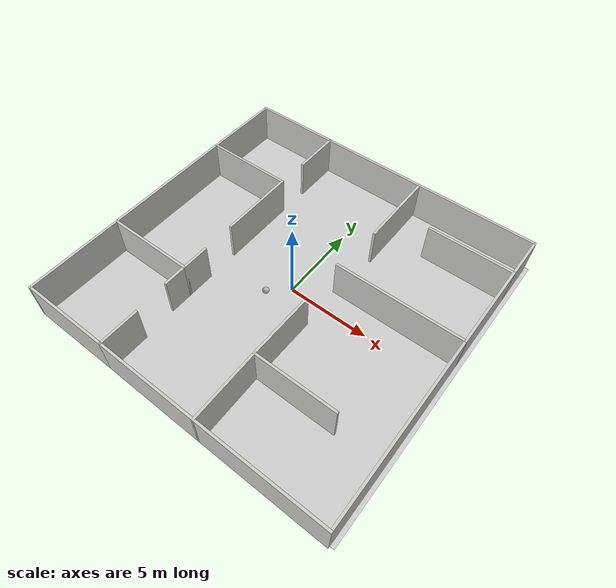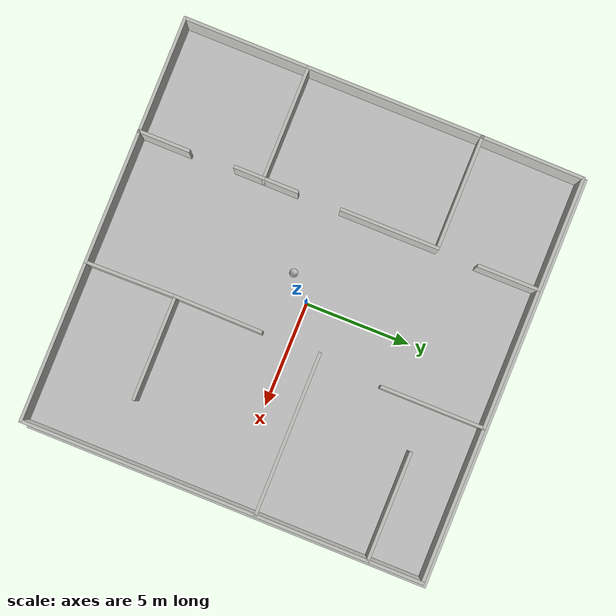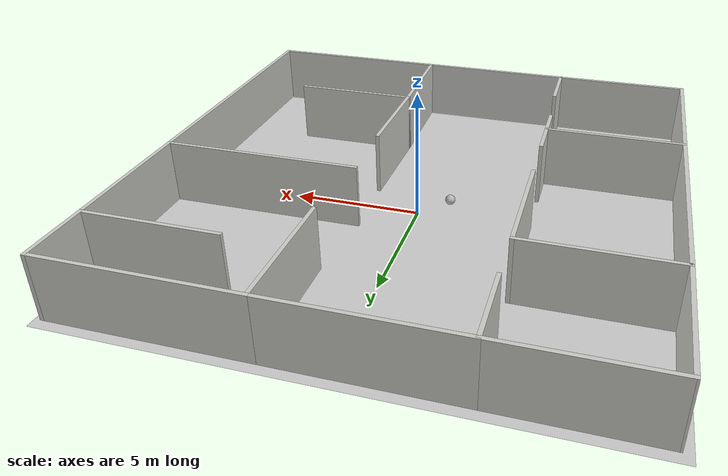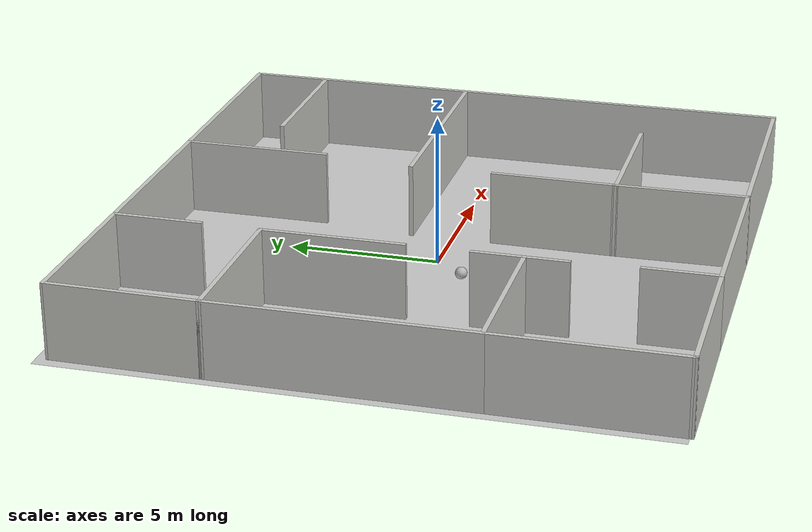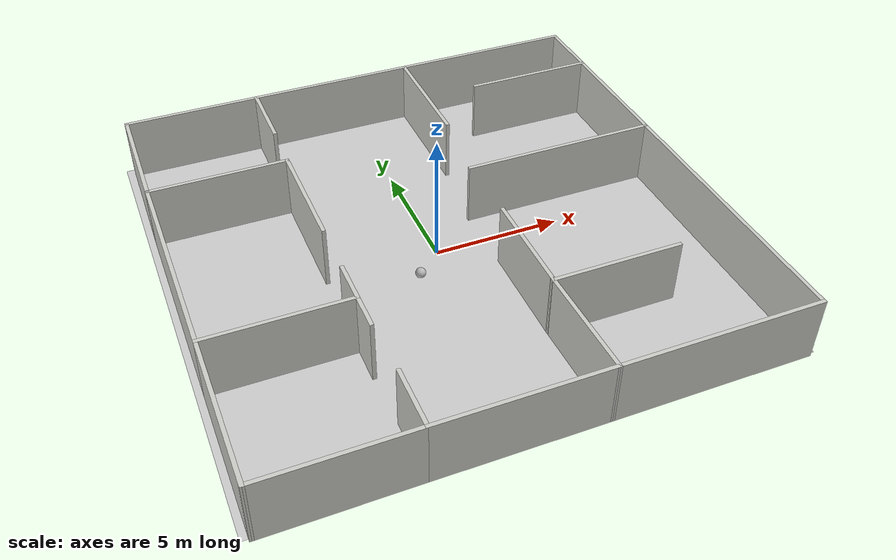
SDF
<sdf version="1.7">
 <world name="default">
  <gravity>0 0 -9.8</gravity>
  <magnetic_field>6e-06 2.3e-05 -4.2e-05</magnetic_field>
  <atmosphere type="adiabatic"/>
  <physics type="ode">
   <max_step_size>0.001</max_step_size>
   <real_time_factor>1</real_time_factor>
   <real_time_update_rate>1000</real_time_update_rate>
  </physics>
  <scene>
   <sky><clouds><speed>12</speed></clouds></sky>
   <ambient>0.4 0.4 0.4 1</ambient>
   <background>0.7 0.7 0.7 1</background>
   <shadows>1</shadows>
  </scene>
  <spherical_coordinates>
   <surface_model>EARTH_WGS84</surface_model>
   <latitude_deg>0</latitude_deg>
   <longitude_deg>0</longitude_deg>
   <elevation>0</elevation>
   <heading_deg>0</heading_deg>
  </spherical_coordinates>
  <model name="byu">
   <static>1</static>
   <link name="link">
    <collision name="collision">
     <geometry><plane><normal>0 0 1</normal><size>20 19.5</size></plane></geometry>
     <surface><friction><ode><mu>100</mu><mu2>50</mu2></ode></friction></surface>
    </collision>
    <visual name="visual">
     <cast_shadows>0</cast_shadows>
     <geometry><plane><normal>0 0 1</normal><size>20 19.5</size></plane></geometry>
     <material>
      <script><uri>model://byu/materials/scripts/byu.material</uri><name>BYU/ground</name></script>
     </material>
    </visual>
   </link>
   <pose>-0.039876 0.058624 0 0 -0 0</pose>
  </model>
  <light name="user_spot_light_0" type="spot">
   <pose>0.045064 0.035485 1 0 -0 0</pose>
   <diffuse>0.5 0.5 0.5 1</diffuse>
   <specular>0.1 0.1 0.1 1</specular>
   <direction>0 0 -1</direction>
   <attenuation>
    <range>20</range>
    <constant>0.5</constant>
    <linear>0.01</linear>
    <quadratic>0.001</quadratic>
   </attenuation>
   <cast_shadows>0</cast_shadows>
   <spot><inner_angle>0.6</inner_angle><outer_angle>1</outer_angle><falloff>1</falloff></spot>
  </light>
  <light name="user_point_light_0" type="point">
   <pose>-6.90669 5.7194 1 0 -0 0</pose>
   <diffuse>0.5 0.5 0.5 1</diffuse>
   <specular>0.1 0.1 0.1 1</specular>
   <attenuation>
    <range>20</range>
    <constant>0.5</constant>
    <linear>0.01</linear>
    <quadratic>0.001</quadratic>
   </attenuation>
   <cast_shadows>0</cast_shadows>
   <direction>0 0 -1</direction>
   <spot><inner_angle>0</inner_angle><outer_angle>0</outer_angle><falloff>0</falloff></spot>
  </light>
  <model name="map1">
   <pose>-0.02989 -0.17816 0 0 -0 0</pose>
   <link name="Wall_12">
    <collision name="Wall_12_Collision">
     <geometry><box><size>4.75 0.15 2.5</size></box></geometry>
     <pose>0 0 1.25 0 -0 0</pose>
    </collision>
    <visual name="Wall_12_Visual">
     <pose>0 0 1.25 0 -0 0</pose>
     <geometry><box><size>4.75 0.15 2.5</size></box></geometry>
     <material>
      <script><uri>file://media/materials/scripts/gazebo.material</uri><name>Gazebo/CeilingTiled</name></script>
      <ambient>1 1 1 1</ambient>
     </material>
     <meta><layer>0</layer></meta>
    </visual>
    <pose>-4.3247 2.41561 0 0 -0 -1.5708</pose>
   </link>
   <link name="Wall_16">
    <collision name="Wall_16_Collision">
     <geometry><box><size>5.5 0.15 2.5</size></box></geometry>
     <pose>0 0 1.25 0 -0 0</pose>
    </collision>
    <visual name="Wall_16_Visual">
     <pose>0 0 1.25 0 -0 0</pose>
     <geometry><box><size>5.5 0.15 2.5</size></box></geometry>
     <material>
      <script><uri>file://media/materials/scripts/gazebo.material</uri><name>Gazebo/CeilingTiled</name></script>
      <ambient>1 1 1 1</ambient>
     </material>
     <meta><layer>0</layer></meta>
    </visual>
    <pose>-6.9997 4.71561 0 0 -0 3.14159</pose>
   </link>
   <link name="Wall_17">
    <collision name="Wall_17_Collision">
     <geometry><box><size>0.15 0.15 2.5</size></box></geometry>
     <pose>0 0 1.25 0 -0 0</pose>
    </collision>
    <visual name="Wall_17_Visual">
     <pose>0 0 1.25 0 -0 0</pose>
     <geometry><box><size>0.15 0.15 2.5</size></box></geometry>
     <material>
      <script><uri>file://media/materials/scripts/gazebo.material</uri><name>Gazebo/Grey</name></script>
      <ambient>1 1 1 1</ambient>
     </material>
     <meta><layer>0</layer></meta>
    </visual>
    <pose>-9.6747 4.71561 0 0 -0 0</pose>
   </link>
   <link name="Wall_19">
    <collision name="Wall_19_Collision">
     <geometry><box><size>8.5 0.15 2.5</size></box></geometry>
     <pose>0 0 1.25 0 -0 0</pose>
    </collision>
    <visual name="Wall_19_Visual">
     <pose>0 0 1.25 0 -0 0</pose>
     <geometry><box><size>8.5 0.15 2.5</size></box></geometry>
     <material>
      <script><uri>file://media/materials/scripts/gazebo.material</uri><name>Gazebo/CeilingTiled</name></script>
      <ambient>1 1 1 1</ambient>
     </material>
     <meta><layer>0</layer></meta>
    </visual>
    <pose>-9.6747 0.540606 0 0 -0 -1.5708</pose>
   </link>
   <link name="Wall_20">
    <collision name="Wall_20_Collision">
     <geometry><box><size>5.5 0.15 2.5</size></box></geometry>
     <pose>0 0 1.25 0 -0 0</pose>
    </collision>
    <visual name="Wall_20_Visual">
     <pose>0 0 1.25 0 -0 0</pose>
     <geometry><box><size>5.5 0.15 2.5</size></box></geometry>
     <material>
      <script><uri>file://media/materials/scripts/gazebo.material</uri><name>Gazebo/CeilingTiled</name></script>
      <ambient>1 1 1 1</ambient>
     </material>
     <meta><layer>0</layer></meta>
    </visual>
    <pose>-6.9997 -3.63439 0 0 -0 0</pose>
   </link>
   <link name="Wall_21">
    <collision name="Wall_21_Collision">
     <geometry><box><size>1.75 0.15 2.5</size></box></geometry>
     <pose>0 0 1.25 0 -0 0</pose>
    </collision>
    <visual name="Wall_21_Visual">
     <pose>0 0 1.25 0 -0 0</pose>
     <geometry><box><size>1.75 0.15 2.5</size></box></geometry>
     <material>
      <script><uri>file://media/materials/scripts/gazebo.material</uri><name>Gazebo/CeilingTiled</name></script>
      <ambient>1 1 1 1</ambient>
     </material>
     <meta><layer>0</layer></meta>
    </visual>
    <pose>-4.3247 -2.83439 0 0 -0 1.5708</pose>
   </link>
   <link name="Wall_23">
    <collision name="Wall_23_Collision">
     <geometry><box><size>1.5 0.15 2.5</size></box></geometry>
     <pose>0 0 1.25 0 -0 0</pose>
    </collision>
    <visual name="Wall_23_Visual">
     <pose>0 0 1.25 0 -0 0</pose>
     <geometry><box><size>1.5 0.15 2.5</size></box></geometry>
     <material>
      <script><uri>file://media/materials/scripts/gazebo.material</uri><name>Gazebo/CeilingTiled</name></script>
      <ambient>1 1 1 1</ambient>
     </material>
     <meta><layer>0</layer></meta>
    </visual>
    <pose>-4.3247 -4.30939 0 0 -0 -1.5708</pose>
   </link>
   <link name="Wall_26">
    <collision name="Wall_26_Collision">
     <geometry><box><size>6.08091 0.15 2.5</size></box></geometry>
     <pose>0 0 1.25 0 -0 0</pose>
    </collision>
    <visual name="Wall_26_Visual">
     <pose>0 0 1.25 0 -0 0</pose>
     <geometry><box><size>6.08091 0.15 2.5</size></box></geometry>
     <material>
      <script><uri>file://media/materials/scripts/gazebo.material</uri><name>Gazebo/CeilingTiled</name></script>
      <ambient>1 1 1 1</ambient>
     </material>
     <meta><layer>0</layer></meta>
    </visual>
    <pose>-9.6747 -6.59985 0 0 -0 -1.5708</pose>
   </link>
   <link name="Wall_28">
    <collision name="Wall_28_Collision">
     <geometry><box><size>11.3309 0.15 2.5</size></box></geometry>
     <pose>0 0 1.25 0 -0 0</pose>
    </collision>
    <visual name="Wall_28_Visual">
     <pose>0 0 1.25 0 -0 0</pose>
     <geometry><box><size>11.3309 0.15 2.5</size></box></geometry>
     <material>
      <script><uri>file://media/materials/scripts/gazebo.material</uri><name>Gazebo/CeilingTiled</name></script>
      <ambient>1 1 1 1</ambient>
     </material>
     <meta><layer>0</layer></meta>
    </visual>
    <pose>9.6753 -3.97485 0 0 -0 1.5708</pose>
   </link>
   <link name="Wall_29">
    <collision name="Wall_29_Collision">
     <geometry><box><size>5.5 0.15 2.5</size></box></geometry>
     <pose>0 0 1.25 0 -0 0</pose>
    </collision>
    <visual name="Wall_29_Visual">
     <pose>0 0 1.25 0 -0 0</pose>
     <geometry><box><size>5.5 0.15 2.5</size></box></geometry>
     <material>
      <script><uri>file://media/materials/scripts/gazebo.material</uri><name>Gazebo/CeilingTiled</name></script>
      <ambient>1 1 1 1</ambient>
     </material>
     <meta><layer>0</layer></meta>
    </visual>
    <pose>9.6753 4.29061 0 0 -0 1.5708</pose>
   </link>
   <link name="Wall_32">
    <collision name="Wall_32_Collision">
     <geometry><box><size>2.75 0.15 2.5</size></box></geometry>
     <pose>0 0 1.25 0 -0 0</pose>
    </collision>
    <visual name="Wall_32_Visual">
     <pose>0 0 1.25 0 -0 0</pose>
     <geometry><box><size>2.75 0.15 2.5</size></box></geometry>
     <material>
      <script><uri>file://media/materials/scripts/gazebo.material</uri><name>Gazebo/CeilingTiled</name></script>
      <ambient>1 1 1 1</ambient>
     </material>
     <meta><layer>0</layer></meta>
    </visual>
    <pose>9.6753 8.26561 0 0 -0 1.5708</pose>
   </link>
   <link name="Wall_34">
    <collision name="Wall_34_Collision">
     <geometry><box><size>5.25 0.15 2.5</size></box></geometry>
     <pose>0 0 1.25 0 -0 0</pose>
    </collision>
    <visual name="Wall_34_Visual">
     <pose>0 0 1.25 0 -0 0</pose>
     <geometry><box><size>5.25 0.15 2.5</size></box></geometry>
     <material>
      <script><uri>file://media/materials/scripts/gazebo.material</uri><name>Gazebo/CeilingTiled</name></script>
      <ambient>1 1 1 1</ambient>
     </material>
     <meta><layer>0</layer></meta>
    </visual>
    <pose>7.1253 6.96561 0 0 -0 3.14159</pose>
   </link>
   <link name="Wall_38">
    <collision name="Wall_38_Collision">
     <geometry><box><size>7.82777 0.15 2.5</size></box></geometry>
     <pose>0 0 1.25 0 -0 0</pose>
    </collision>
    <visual name="Wall_38_Visual">
     <pose>0 0 1.25 0 -0 0</pose>
     <geometry><box><size>7.82777 0.15 2.5</size></box></geometry>
     <material>
      <script><uri>file://media/materials/scripts/gazebo.material</uri><name>Gazebo/CeilingTiled</name></script>
      <ambient>1 1 1 1</ambient>
     </material>
     <meta><layer>0</layer></meta>
    </visual>
    <pose>5.83642 1.60681 0 0 -0 0.002292</pose>
   </link>
   <link name="Wall_40">
    <collision name="Wall_40_Collision">
     <geometry><box><size>4.2502 0.15 2.5</size></box></geometry>
     <pose>0 0 1.25 0 -0 0</pose>
    </collision>
    <visual name="Wall_40_Visual">
     <pose>0 0 1.25 0 -0 0</pose>
     <geometry><box><size>4.2502 0.15 2.5</size></box></geometry>
     <material>
      <script><uri>file://media/materials/scripts/gazebo.material</uri><name>Gazebo/CeilingTiled</name></script>
      <ambient>1 1 1 1</ambient>
     </material>
     <meta><layer>0</layer></meta>
    </visual>
    <pose>2.03364 -3.24656 0 0 -0 -1.58066</pose>
   </link>
   <link name="Wall_41">
    <collision name="Wall_41_Collision">
     <geometry><box><size>5.04113 0.15 2.5</size></box></geometry>
     <pose>0 0 1.25 0 -0 0</pose>
    </collision>
    <visual name="Wall_41_Visual">
     <pose>0 0 1.25 0 -0 0</pose>
     <geometry><box><size>5.04113 0.15 2.5</size></box></geometry>
     <material>
      <script><uri>file://media/materials/scripts/gazebo.material</uri><name>Gazebo/CeilingTiled</name></script>
      <ambient>1 1 1 1</ambient>
     </material>
     <meta><layer>0</layer></meta>
    </visual>
    <pose>4.45864 -5.29657 0 0 -0 0</pose>
   </link>
   <link name="Wall_43">
    <collision name="Wall_43_Collision">
     <geometry><box><size>4.45964 0.15 2.5</size></box></geometry>
     <pose>0 0 1.25 0 -0 0</pose>
    </collision>
    <visual name="Wall_43_Visual">
     <pose>0 0 1.25 0 -0 0</pose>
     <geometry><box><size>4.45964 0.15 2.5</size></box></geometry>
     <material>
      <script><uri>file://media/materials/scripts/gazebo.material</uri><name>Gazebo/CeilingTiled</name></script>
      <ambient>1 1 1 1</ambient>
     </material>
     <meta><layer>0</layer></meta>
    </visual>
    <pose>2.04436 -7.41071 0 0 -0 -1.55644</pose>
   </link>
   <link name="Wall_46">
    <collision name="Wall_46_Collision">
     <geometry><box><size>7.5 0.15 2.5</size></box></geometry>
     <pose>0 0 1.25 0 -0 0</pose>
    </collision>
    <visual name="Wall_46_Visual">
     <pose>0 0 1.25 0 -0 0</pose>
     <geometry><box><size>7.5 0.15 2.5</size></box></geometry>
     <material>
      <script><uri>file://media/materials/scripts/gazebo.material</uri><name>Gazebo/CeilingTiled</name></script>
      <ambient>1 1 1 1</ambient>
     </material>
     <meta><layer>0</layer></meta>
    </visual>
    <pose>6.0003 9.56561 0 0 -0 3.14159</pose>
   </link>
   <link name="Wall_47">
    <collision name="Wall_47_Collision">
     <geometry><box><size>5 0.15 2.5</size></box></geometry>
     <pose>0 0 1.25 0 -0 0</pose>
    </collision>
    <visual name="Wall_47_Visual">
     <pose>0 0 1.25 0 -0 0</pose>
     <geometry><box><size>5 0.15 2.5</size></box></geometry>
     <material>
      <script><uri>file://media/materials/scripts/gazebo.material</uri><name>Gazebo/CeilingTiled</name></script>
      <ambient>1 1 1 1</ambient>
     </material>
     <meta><layer>0</layer></meta>
    </visual>
    <pose>2.3253 7.14061 0 0 -0 -1.5708</pose>
   </link>
   <link name="Wall_49">
    <collision name="Wall_49_Collision">
     <geometry><box><size>6.75 0.15 2.5</size></box></geometry>
     <pose>0 0 1.25 0 -0 0</pose>
    </collision>
    <visual name="Wall_49_Visual">
     <pose>0 0 1.25 0 -0 0</pose>
     <geometry><box><size>6.75 0.15 2.5</size></box></geometry>
     <material>
      <script><uri>file://media/materials/scripts/gazebo.material</uri><name>Gazebo/CeilingTiled</name></script>
      <ambient>1 1 1 1</ambient>
     </material>
     <meta><layer>0</layer></meta>
    </visual>
    <pose>-0.974701 9.56561 0 0 -0 3.14159</pose>
   </link>
   <link name="Wall_50">
    <collision name="Wall_50_Collision">
     <geometry><box><size>3 0.15 2.5</size></box></geometry>
     <pose>0 0 1.25 0 -0 0</pose>
    </collision>
    <visual name="Wall_50_Visual">
     <pose>0 0 1.25 0 -0 0</pose>
     <geometry><box><size>3 0.15 2.5</size></box></geometry>
     <material>
      <script><uri>file://media/materials/scripts/gazebo.material</uri><name>Gazebo/CeilingTiled</name></script>
      <ambient>1 1 1 1</ambient>
     </material>
     <meta><layer>0</layer></meta>
    </visual>
    <pose>-4.2747 8.14061 0 0 -0 -1.5708</pose>
   </link>
   <link name="Wall_53">
    <collision name="Wall_53_Collision">
     <geometry><box><size>5.5 0.15 2.5</size></box></geometry>
     <pose>0 0 1.25 0 -0 0</pose>
    </collision>
    <visual name="Wall_53_Visual">
     <pose>0 0 1.25 0 -0 0</pose>
     <geometry><box><size>5.5 0.15 2.5</size></box></geometry>
     <material>
      <script><uri>file://media/materials/scripts/gazebo.material</uri><name>Gazebo/CeilingTiled</name></script>
      <ambient>1 1 1 1</ambient>
     </material>
     <meta><layer>0</layer></meta>
    </visual>
    <pose>-6.9497 9.56561 0 0 -0 3.14159</pose>
   </link>
   <link name="Wall_56">
    <collision name="Wall_56_Collision">
     <geometry><box><size>5.00026 0.15 2.5</size></box></geometry>
     <pose>0 0 1.25 0 -0 0</pose>
    </collision>
    <visual name="Wall_56_Visual">
     <pose>0 0 1.25 0 -0 0</pose>
     <geometry><box><size>5.00026 0.15 2.5</size></box></geometry>
     <material>
      <script><uri>file://media/materials/scripts/gazebo.material</uri><name>Gazebo/CeilingTiled</name></script>
      <ambient>1 1 1 1</ambient>
     </material>
     <meta><layer>0</layer></meta>
    </visual>
    <pose>-9.6497 7.14061 0 0 -0 1.56049</pose>
   </link>
   <link name="Wall_58">
    <collision name="Wall_58_Collision">
     <geometry><box><size>2.5 0.15 2.5</size></box></geometry>
     <pose>0 0 1.25 0 -0 0</pose>
    </collision>
    <visual name="Wall_58_Visual">
     <pose>0 0 1.25 0 -0 0</pose>
     <geometry><box><size>2.5 0.15 2.5</size></box></geometry>
     <material>
      <script><uri>file://media/materials/scripts/gazebo.material</uri><name>Gazebo/CeilingTiled</name></script>
      <ambient>1 1 1 1</ambient>
     </material>
     <meta><layer>0</layer></meta>
    </visual>
    <pose>-4.21883 -8.37996 0 0 -0 -1.5708</pose>
   </link>
   <link name="Wall_60">
    <collision name="Wall_60_Collision">
     <geometry><box><size>5.60588 0.15 2.5</size></box></geometry>
     <pose>0 0 1.25 0 -0 0</pose>
    </collision>
    <visual name="Wall_60_Visual">
     <pose>0 0 1.25 0 -0 0</pose>
     <geometry><box><size>5.60588 0.15 2.5</size></box></geometry>
     <material>
      <script><uri>file://media/materials/scripts/gazebo.material</uri><name>Gazebo/CeilingTiled</name></script>
      <ambient>1 1 1 1</ambient>
     </material>
     <meta><layer>0</layer></meta>
    </visual>
    <pose>-6.94677 -9.56013 0 0 -0 0.001896</pose>
   </link>
   <link name="Wall_61">
    <collision name="Wall_61_Collision">
     <geometry><box><size>0.16 0.15 2.5</size></box></geometry>
     <pose>0 0 1.25 0 -0 0</pose>
    </collision>
    <visual name="Wall_61_Visual">
     <pose>0 0 1.25 0 -0 0</pose>
     <geometry><box><size>0.16 0.15 2.5</size></box></geometry>
     <material>
      <script><uri>file://media/materials/scripts/gazebo.material</uri><name>Gazebo/Grey</name></script>
      <ambient>1 1 1 1</ambient>
     </material>
     <meta><layer>0</layer></meta>
    </visual>
    <pose>-4.21383 -9.55496 0 0 -0 0</pose>
   </link>
   <link name="Wall_64">
    <collision name="Wall_64_Collision">
     <geometry><box><size>7.75 0.15 2.5</size></box></geometry>
     <pose>0 0 1.25 0 -0 0</pose>
    </collision>
    <visual name="Wall_64_Visual">
     <pose>0 0 1.25 0 -0 0</pose>
     <geometry><box><size>7.75 0.15 2.5</size></box></geometry>
     <material>
      <script><uri>file://media/materials/scripts/gazebo.material</uri><name>Gazebo/CeilingTiled</name></script>
      <ambient>1 1 1 1</ambient>
     </material>
     <meta><layer>0</layer></meta>
    </visual>
    <pose>5.8753 -9.56531 0 0 -0 3.14159</pose>
   </link>
   <link name="Wall_65">
    <collision name="Wall_65_Collision">
     <geometry><box><size>6.44414 0.15 2.5</size></box></geometry>
     <pose>0 0 1.25 0 -0 0</pose>
    </collision>
    <visual name="Wall_65_Visual">
     <pose>0 0 1.25 0 -0 0</pose>
     <geometry><box><size>6.44414 0.15 2.5</size></box></geometry>
     <material>
      <script><uri>file://media/materials/scripts/gazebo.material</uri><name>Gazebo/CeilingTiled</name></script>
      <ambient>1 1 1 1</ambient>
     </material>
     <meta><layer>0</layer></meta>
    </visual>
    <pose>-1.07177 -9.56013 0 0 -0 3.13995</pose>
   </link>
   <static>1</static>
  </model>
  <model name="pointball">
   <static>0</static>
   <link name="link">
    <inertial>
     <inertia><ixx>1</ixx><ixy>0</ixy><ixz>0</ixz><iyy>1</iyy><iyz>0</iyz><izz>1</izz></inertia>
     <mass>1</mass>
    </inertial>
    <collision name="collision">
     <geometry><sphere><radius>0.2</radius></sphere></geometry>
     <surface><friction><ode><mu>100</mu><mu2>50</mu2></ode></friction></surface>
    </collision>
    <visual name="visual">
     <geometry><sphere><radius>0.2</radius></sphere></geometry>
     <material>
      <script>
       <uri>/home/polo/robopgave/robopgave_ws/src/robopgave_pkg/models/pointball/./materials/scripts/pointball.material</uri>
       <name>Robopgave/Pointball</name>
      </script>
     </material>
    </visual>
    <light name="point_light" type="point">
     <diffuse>1 0 0 1</diffuse>
     <specular>0.1 0.1 0.1 1</specular>
     <attenuation>
      <range>10</range>
      <linear>0</linear>
      <constant>0</constant>
      <quadratic>0.01</quadratic>
     </attenuation>
     <direction>0 0 -1</direction>
     <spot><inner_angle>0</inner_angle><outer_angle>0</outer_angle><falloff>0</falloff></spot>
    </light>
   </link>
   <pose>-1.06584 -1.05287 0.2 0 -0 0</pose>
  </model>
 </world>
</sdf>
